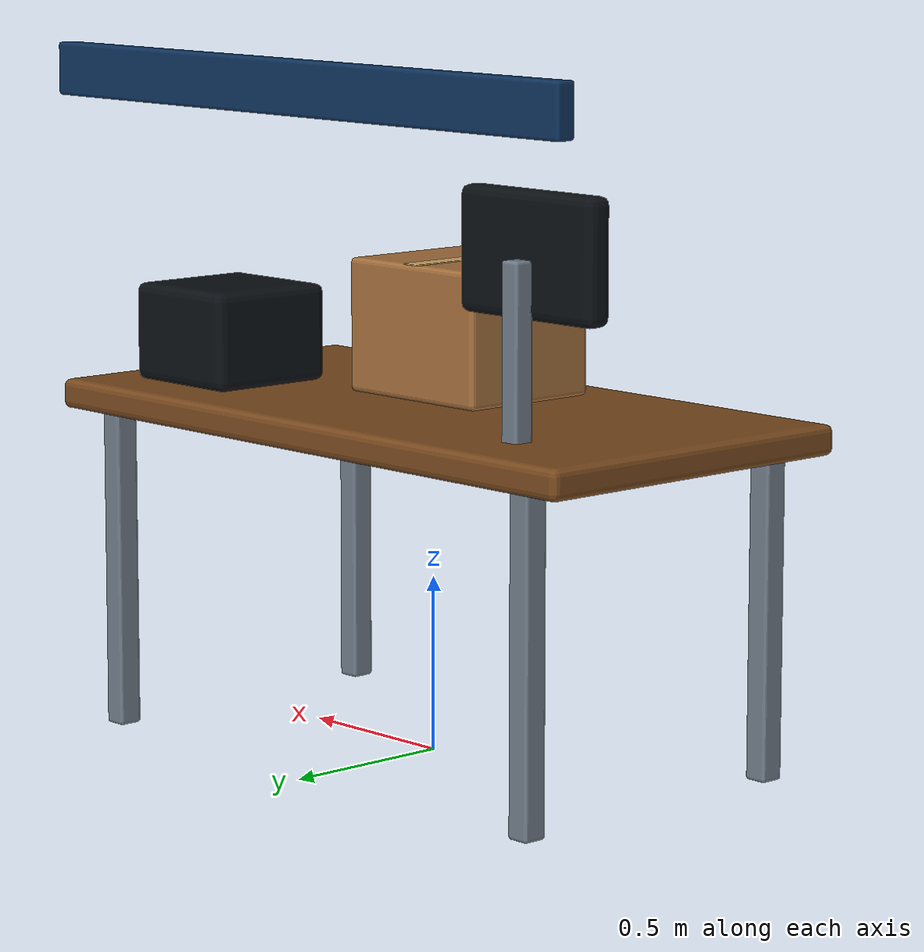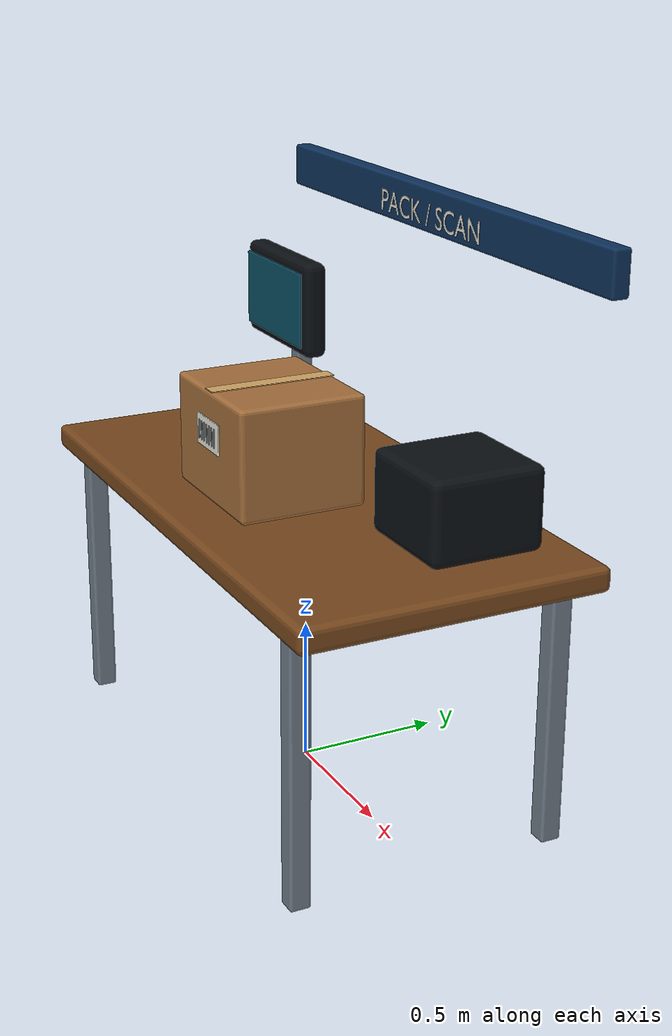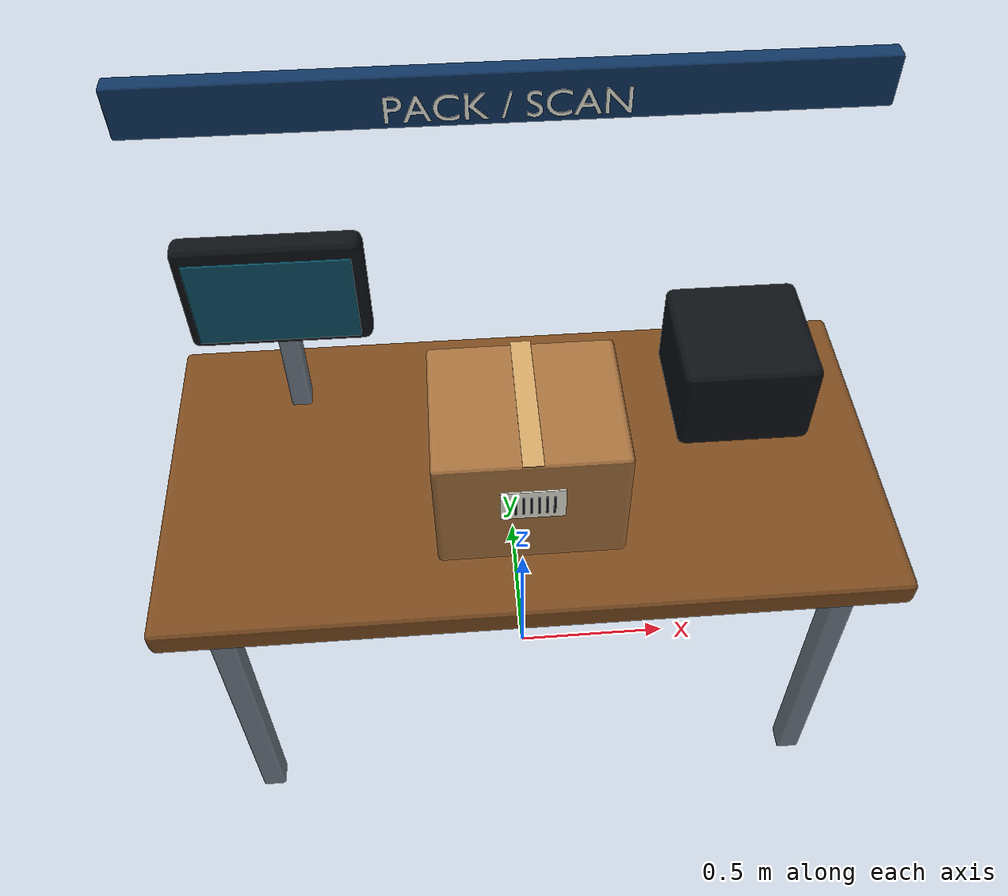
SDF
<?xml version='1.0' encoding='utf-8'?>
<sdf version="1.10">
  <model name="packing_bench">
    <static>true</static>
    <link name="body">
      <collision name="envelope">
        <pose>0 0 1.025 0 0 0</pose>
        <geometry>
          <box>
            <size>2.2 1.3 2.05</size>
          </box>
        </geometry>
      </collision>
      <visual name="steel">
        <geometry>
          <mesh>
            <uri>model://packing_bench/meshes/steel.obj</uri>
          </mesh>
        </geometry>
        <material>
          <diffuse>0.44 0.49 0.54 1</diffuse>
          <ambient>0.308 0.34299999999999997 0.378 1</ambient>
          <specular>0.4 0.4 0.4 1</specular>
        </material>
      </visual>
      <visual name="wood">
        <geometry>
          <mesh>
            <uri>model://packing_bench/meshes/wood.obj</uri>
          </mesh>
        </geometry>
        <material>
          <diffuse>0.48 0.29 0.12 1</diffuse>
          <ambient>0.33599999999999997 0.20299999999999999 0.08399999999999999 1</ambient>
          <specular>0.1 0.1 0.1 1</specular>
        </material>
      </visual>
      <visual name="dark">
        <geometry>
          <mesh>
            <uri>model://packing_bench/meshes/dark.obj</uri>
          </mesh>
        </geometry>
        <material>
          <diffuse>0.045 0.06 0.077 1</diffuse>
          <ambient>0.0315 0.041999999999999996 0.053899999999999997 1</ambient>
          <specular>0.1 0.1 0.1 1</specular>
        </material>
      </visual>
      <visual name="glass">
        <geometry>
          <mesh>
            <uri>model://packing_bench/meshes/glass.obj</uri>
          </mesh>
        </geometry>
        <material>
          <diffuse>0.035 0.31 0.39 1</diffuse>
          <ambient>0.0245 0.217 0.27299999999999996 1</ambient>
          <specular>0.4 0.4 0.4 1</specular>
        </material>
      </visual>
      <visual name="cardboard">
        <geometry>
          <mesh>
            <uri>model://packing_bench/meshes/cardboard.obj</uri>
          </mesh>
        </geometry>
        <material>
          <diffuse>0.65 0.44 0.24 1</diffuse>
          <ambient>0.45499999999999996 0.308 0.16799999999999998 1</ambient>
          <specular>0.1 0.1 0.1 1</specular>
        </material>
      </visual>
      <visual name="tape">
        <geometry>
          <mesh>
            <uri>model://packing_bench/meshes/tape.obj</uri>
          </mesh>
        </geometry>
        <material>
          <diffuse>0.82 0.65 0.4 1</diffuse>
          <ambient>0.574 0.45499999999999996 0.27999999999999997 1</ambient>
          <specular>0.1 0.1 0.1 1</specular>
        </material>
      </visual>
      <visual name="label">
        <geometry>
          <mesh>
            <uri>model://packing_bench/meshes/label.obj</uri>
          </mesh>
        </geometry>
        <material>
          <diffuse>0.92 0.92 0.87 1</diffuse>
          <ambient>0.644 0.644 0.609 1</ambient>
          <specular>0.1 0.1 0.1 1</specular>
        </material>
      </visual>
      <visual name="blue">
        <geometry>
          <mesh>
            <uri>model://packing_bench/meshes/blue.obj</uri>
          </mesh>
        </geometry>
        <material>
          <diffuse>0.055 0.2 0.37 1</diffuse>
          <ambient>0.0385 0.13999999999999999 0.259 1</ambient>
          <specular>0.1 0.1 0.1 1</specular>
        </material>
      </visual>
    </link>
  </model>
</sdf>
